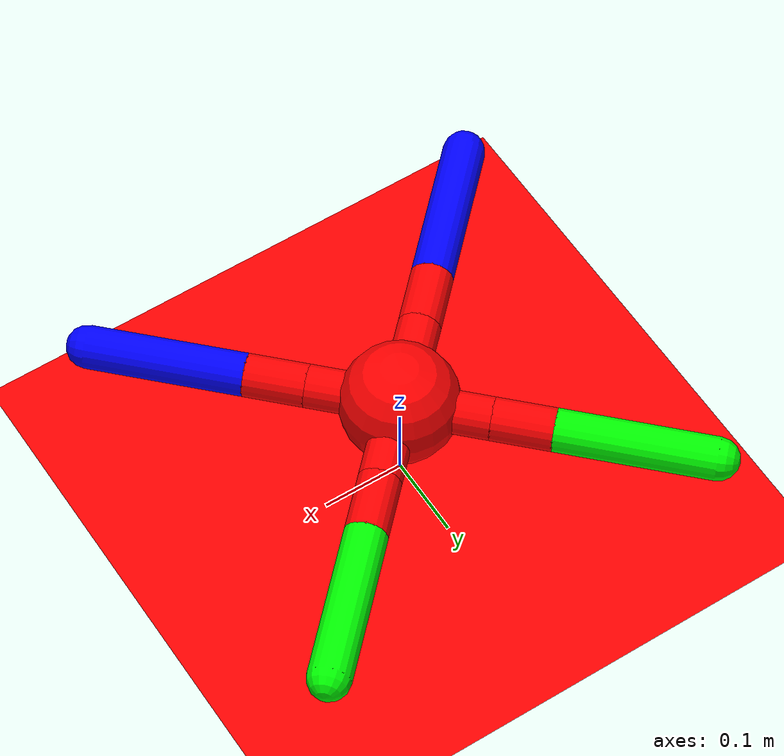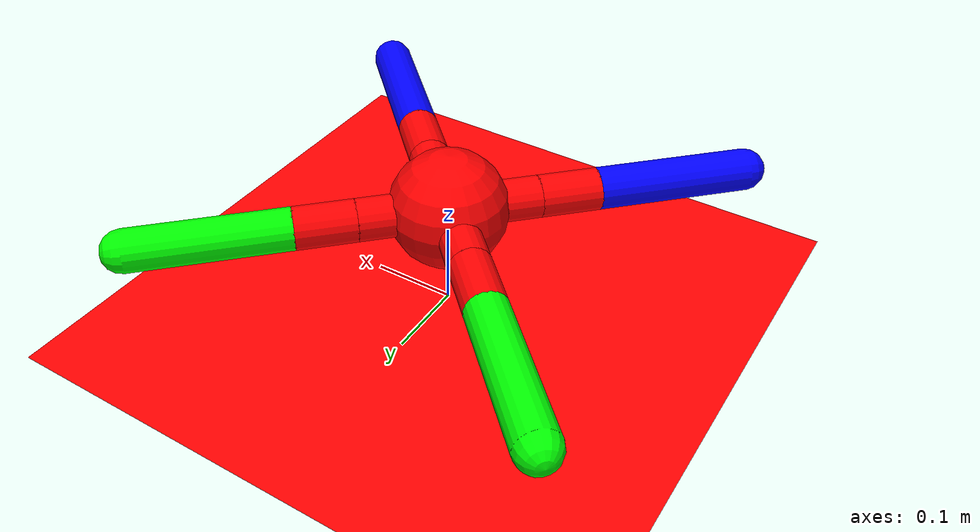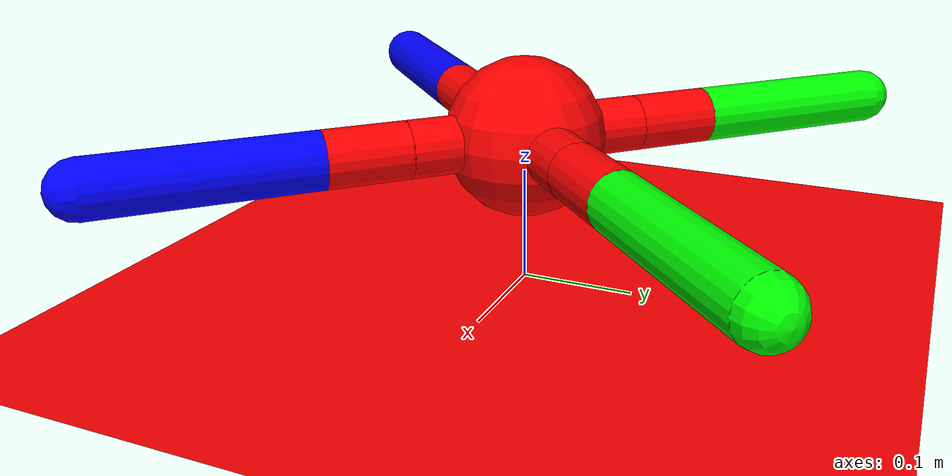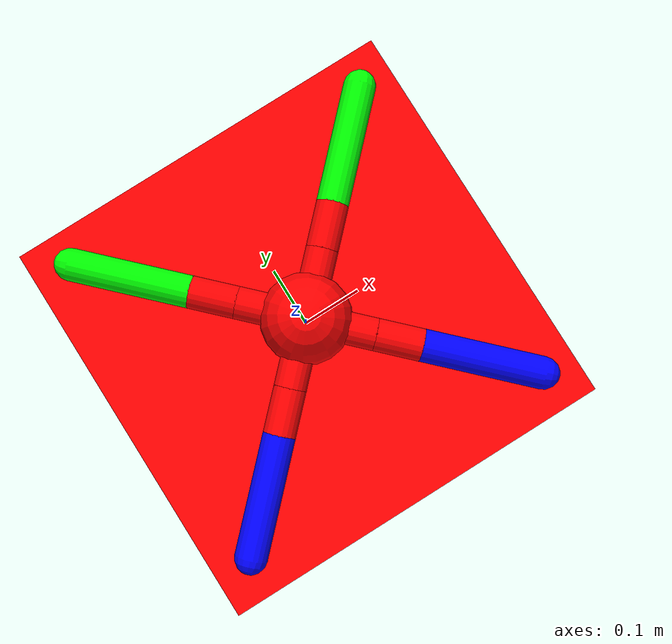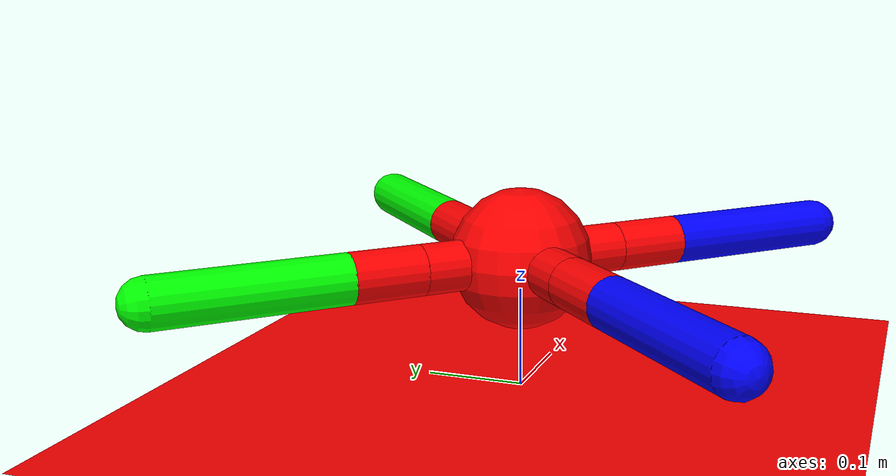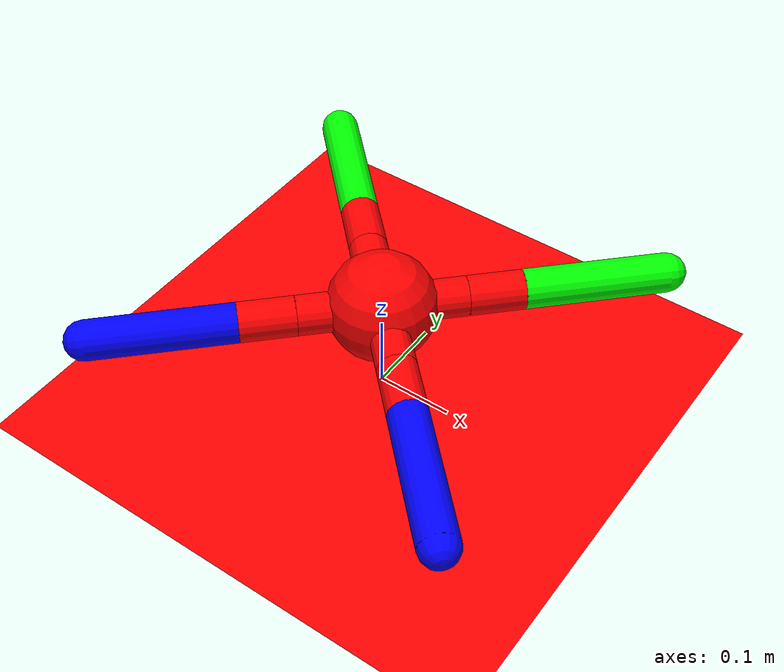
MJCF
<mujoco model="ant">
  <option timestep="0.01"/>
  <size njmax="3000" nconmax="3000"/>
  <default>
    <joint limited="true" stiffness="0.01"/>
    <geom condim="6" size="0.0252" rgba="1 0 0 1" type="capsule" density="5"/>
    <motor ctrllimited="true" ctrlrange="-1.0 1.0" gear=".025"/>
    <site size="0.0256" type="sphere" rgba="1 0 0 0"/>
  </default>
  <worldbody>
    <geom name="floor" size="5 5 0.05" type="plane" condim="6"/>
    <body name="robot" pos="0 0 0.132">
      <camera name="vision" pos=".125 0 .2" xyaxes="0 -1 0 .4 0 1" fovy="300"/>
      <site name="robot" pos="0 0 0"/>
      <geom name="robot" pos="0 0 0" size="0.07" type="sphere"/>
      <joint armature="0" damping="0" limited="false" margin="0.01" name="robot" pos="0 0 0" type="free"/>

      <body name="front_left_leg" pos="0 0 0">
        <geom fromto="0.0 0.0 0.0 0.075 0.075 0.0" name="aux_1_geom" size="0.025" type="capsule"/>
        <body name="aux_1" pos="0.075 0.075 0">
          <joint axis="0 0 1" name="hip_1" pos="0.0 0.0 0.0" range="-30 30" type="hinge"/>
          <geom fromto="0.0 0.0 0.0 0.05 0.05 0.0" name="left_leg_geom" size="0.025" type="capsule"/>
          <body pos="0.05 0.05 0">
            <joint axis="-1 1 0" name="ankle_1" pos="0.0 0.0 0.0" range="30 70" type="hinge"/>
            <geom fromto="0.0 0.0 0.0 0.13 0.13 0.0" name="left_ankle_geom" size="0.025" rgba="0 1 0 1" type="capsule"/>
          </body>
        </body>
      </body>
      <body name="front_right_leg" pos="0 0 0">
        <geom fromto="0.0 0.0 0.0 -0.075 0.075 0.0" name="aux_2_geom" size="0.025" type="capsule"/>
        <body name="aux_2" pos="-0.075 0.075 0">
          <joint axis="0 0 1" name="hip_2" pos="0.0 0.0 0.0" range="-30 30" type="hinge"/>
          <geom fromto="0.0 0.0 0.0 -0.05 0.05 0.0" name="right_leg_geom" size="0.025" type="capsule"/>
          <body pos="-0.05 0.05 0">
            <joint axis="1 1 0" name="ankle_2" pos="0.0 0.0 0.0" range="-70 -30" type="hinge"/>
            <geom fromto="0.0 0.0 0.0 -0.13 0.13 0.0" name="right_ankle_geom" size="0.025" rgba="0 1 0 1" type="capsule"/>
          </body>
        </body>
      </body>
      <body name="back_leg" pos="0 0 0">
        <geom fromto="0.0 0.0 0.0 -0.075 -0.075 0.0" name="aux_3_geom" size="0.025" type="capsule"/>
        <body name="aux_3" pos="-0.075 -0.075 0">
          <joint axis="0 0 1" name="hip_3" pos="0.0 0.0 0.0" range="-30 30" type="hinge"/>
          <geom fromto="0.0 0.0 0.0 -0.05 -0.05 0.0" name="back_leg_geom" size="0.025" type="capsule"/>
          <body pos="-0.05 -0.05 0">
            <joint axis="-1 1 0" name="ankle_3" pos="0.0 0.0 0.0" range="-70 -30" type="hinge"/>
            <geom fromto="0.0 0.0 0.0 -0.13 -0.13 0.0" name="third_ankle_geom" size="0.025" rgba="0 0 1 1" type="capsule"/>
          </body>
        </body>
      </body>
      <body name="right_back_leg" pos="0 0 0">
        <geom fromto="0.0 0.0 0.0 0.075 -0.075 0.0" name="aux_4_geom" size="0.025" type="capsule"/>
        <body name="aux_4" pos="0.075 -0.075 0">
          <joint axis="0 0 1" name="hip_4" pos="0.0 0.0 0.0" range="-30 30" type="hinge"/>
          <geom fromto="0.0 0.0 0.0 0.05 -0.05 0.0" name="rightback_leg_geom" size="0.025" type="capsule"/>
          <body pos="0.05 -0.05 0">
            <joint axis="1 1 0" name="ankle_4" pos="0.0 0.0 0.0" range="30 70" type="hinge"/>
            <geom fromto="0.0 0.0 0.0 0.13 -0.13 0.0" name="fourth_ankle_geom" size="0.025" rgba="0 0 1 1" type="capsule"/>
          </body>
        </body>
      </body>
    </body>
  </worldbody>
  <sensor>
    <!-- Used for observation -->
    <accelerometer site="robot" name="accelerometer"/>
    <velocimeter site="robot" name="velocimeter"/>
    <gyro site="robot" name="gyro"/>
    <magnetometer site="robot" name="magnetometer"/>

    <!-- Used for intrinsic constraints -->
    <subtreecom body="robot" name="subtreecom"/>
    <subtreelinvel body="robot" name="subtreelinvel"/>
    <subtreeangmom body="robot" name="subtreeangmom"/>
  </sensor>
  <actuator>
    <motor joint="hip_4"/>
    <motor joint="ankle_4"/>
    <motor joint="hip_1"/>
    <motor joint="ankle_1"/>
    <motor joint="hip_2"/>
    <motor joint="ankle_2"/>
    <motor joint="hip_3"/>
    <motor joint="ankle_3"/>
  </actuator>
</mujoco>
